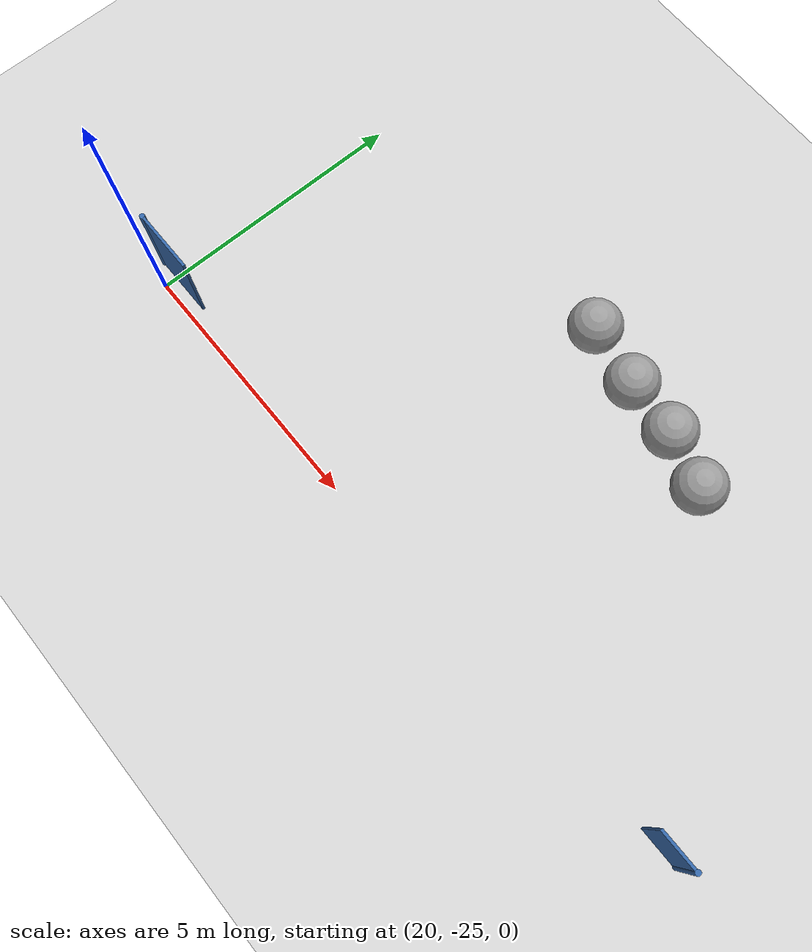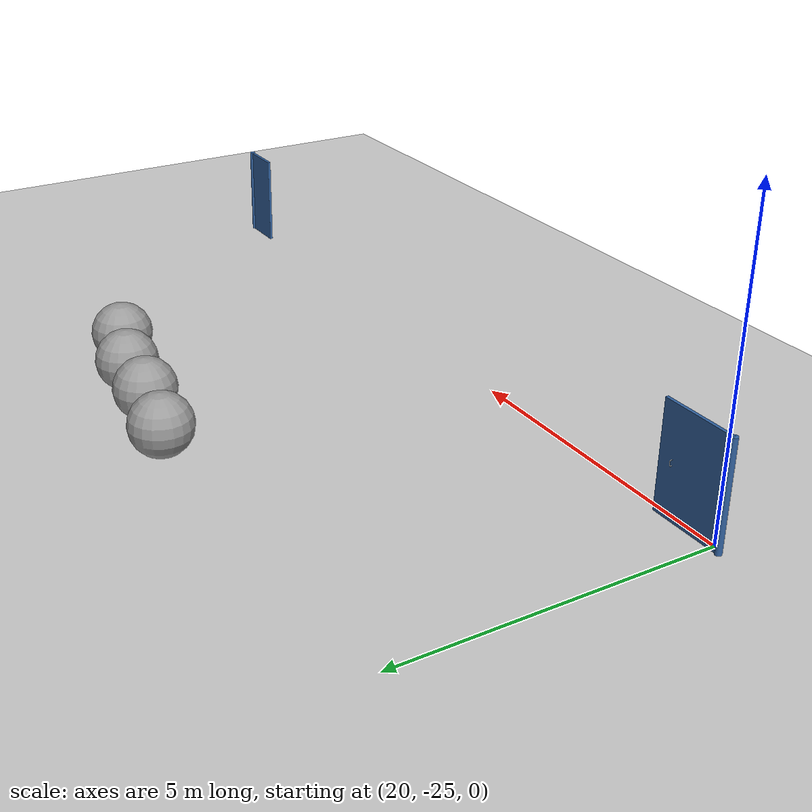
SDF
<sdf version="1.6">
 <world name="default">
  <model name="ground_plane">
   <static>1</static>
   <link name="link">
    <collision name="collision">
     <geometry><plane><normal>0 0 1</normal><size>100 100</size></plane></geometry>
     <surface><friction><ode><mu>100</mu><mu2>50</mu2></ode></friction></surface>
    </collision>
    <visual name="visual">
     <cast_shadows>0</cast_shadows>
     <geometry><plane><normal>0 0 1</normal><size>100 100</size></plane></geometry>
     <material>
      <script><uri>file://media/materials/scripts/gazebo.material</uri><name>Gazebo/Grey</name></script>
     </material>
    </visual>
   </link>
  </model>
  <model name="hinge_door_0.7">
   <link name="link_0">
    <inertial>
     <mass>0.11</mass>
     <inertia>
      <ixx>0.0366896</ixx>
      <ixy>0</ixy>
      <ixz>0</ixz>
      <iyy>0.0477583</iyy>
      <iyz>0</iyz>
      <izz>0.0111146</izz>
     </inertia>
    </inertial>
    <pose>0.05 0 1 0 -0 0</pose>
    <visual name="visual">
     <geometry><box><size>0.7 0.05 1.6</size></box></geometry>
     <material>
      <lighting>1</lighting>
      <script><uri>file://media/materials/scripts/gazebo.material</uri><name>Gazebo/Grey</name></script>
      <shader type="pixel"><normal_map>__default__</normal_map></shader>
      <ambient>0.204 0.396 0.643 1</ambient>
      <diffuse>0.7 0.7 0.7 1</diffuse>
      <specular>0.01 0.01 0.01 1</specular>
      <emissive>0 0 0 1</emissive>
     </material>
    </visual>
    <collision name="collision">
     <geometry><box><size>0.7 0.05 1.6</size></box></geometry>
     <surface>
      <friction>
       <ode><mu>1</mu><mu2>1</mu2><fdir1>0 0 0</fdir1><slip1>0</slip1><slip2>0</slip2></ode>
       <torsional>
        <coefficient>1</coefficient>
        <patch_radius>0</patch_radius>
        <surface_radius>0</surface_radius>
        <use_patch_radius>1</use_patch_radius>
        <ode><slip>0</slip></ode>
       </torsional>
      </friction>
      <bounce><restitution_coefficient>0</restitution_coefficient><threshold>1e+06</threshold></bounce>
      <contact>
       <collide_without_contact>0</collide_without_contact>
       <collide_without_contact_bitmask>1</collide_without_contact_bitmask>
       <collide_bitmask>1</collide_bitmask>
       <ode>
        <soft_cfm>0</soft_cfm>
        <soft_erp>0.2</soft_erp>
        <kp>1e+13</kp>
        <kd>1</kd>
        <max_vel>0.01</max_vel>
        <min_depth>0</min_depth>
       </ode>
       <bullet>
        <split_impulse>1</split_impulse>
        <split_impulse_penetration_threshold>-0.01</split_impulse_penetration_threshold>
        <soft_cfm>0</soft_cfm>
        <soft_erp>0.2</soft_erp>
        <kp>1e+13</kp>
        <kd>1</kd>
       </bullet>
      </contact>
     </surface>
    </collision>
   </link>
   <link name="link_1">
    <inertial>
     <mass>10.9956</mass>
     <inertia>
      <ixx>3.67206</ixx>
      <ixy>0</ixy>
      <ixz>0</ixz>
      <iyy>3.67206</iyy>
      <iyz>0</iyz>
      <izz>0.0137445</izz>
     </inertia>
    </inertial>
    <pose>0.45 0 1 0 -0 0</pose>
    <visual name="visual">
     <geometry><cylinder><radius>0.05</radius><length>1.6</length></cylinder></geometry>
     <material>
      <lighting>1</lighting>
      <script><uri>file://media/materials/scripts/gazebo.material</uri><name>Gazebo/Grey</name></script>
      <shader type="pixel"><normal_map>__default__</normal_map></shader>
      <ambient>0.204 0.396 0.643 1</ambient>
      <diffuse>0.7 0.7 0.7 1</diffuse>
      <specular>0.01 0.01 0.01 1</specular>
      <emissive>0 0 0 1</emissive>
     </material>
    </visual>
    <collision name="collision">
     <geometry><cylinder><radius>0.05</radius><length>2</length></cylinder></geometry>
     <surface>
      <friction>
       <ode><mu>1</mu><mu2>1</mu2><fdir1>0 0 0</fdir1><slip1>0</slip1><slip2>0</slip2></ode>
       <torsional>
        <coefficient>1</coefficient>
        <patch_radius>0</patch_radius>
        <surface_radius>0</surface_radius>
        <use_patch_radius>1</use_patch_radius>
        <ode><slip>0</slip></ode>
       </torsional>
      </friction>
      <bounce><restitution_coefficient>0</restitution_coefficient><threshold>1e+06</threshold></bounce>
      <contact>
       <collide_without_contact>0</collide_without_contact>
       <collide_without_contact_bitmask>1</collide_without_contact_bitmask>
       <collide_bitmask>1</collide_bitmask>
       <ode>
        <soft_cfm>0</soft_cfm>
        <soft_erp>0.2</soft_erp>
        <kp>1e+13</kp>
        <kd>1</kd>
        <max_vel>0.01</max_vel>
        <min_depth>0</min_depth>
       </ode>
       <bullet>
        <split_impulse>1</split_impulse>
        <split_impulse_penetration_threshold>-0.01</split_impulse_penetration_threshold>
        <soft_cfm>0</soft_cfm>
        <soft_erp>0.2</soft_erp>
        <kp>1e+13</kp>
        <kd>1</kd>
       </bullet>
      </contact>
     </surface>
    </collision>
   </link>
   <joint name="hinge" type="revolute">
    <parent>link_1</parent>
    <child>link_0</child>
    <pose>0.4 0 0 0 -0 0</pose>
    <axis>
     <xyz>0 0 1</xyz>
     <use_parent_model_frame>0</use_parent_model_frame>
     <limit>
      <lower>-1.79769e+308</lower>
      <upper>1.79769e+308</upper>
      <effort>-1</effort>
      <velocity>-1</velocity>
     </limit>
     <dynamics>
      <spring_reference>0</spring_reference>
      <spring_stiffness>0</spring_stiffness>
      <damping>0</damping>
      <friction>0</friction>
     </dynamics>
    </axis>
    <physics>
     <ode><limit><cfm>0</cfm><erp>0.2</erp></limit><suspension><cfm>0</cfm><erp>0.2</erp></suspension></ode>
    </physics>
   </joint>
   <joint name="floor_link" type="fixed">
    <child>link_1</child>
    <parent>world</parent>
    <axis>
     <xyz>0 0 1</xyz>
     <dynamics><spring_reference>0</spring_reference><spring_stiffness>0</spring_stiffness></dynamics>
     <use_parent_model_frame>0</use_parent_model_frame>
     <limit><lower>-1e+16</lower><upper>1e+16</upper></limit>
    </axis>
   </joint>
   <pose>32.6803 -24.7227 -0 0 -0 0</pose>
  </model>
  <model name="unit_sphere">
   <pose>27.9635 -20.024 0.5 0 -0 0</pose>
   <link name="link">
    <inertial>
     <mass>1</mass>
     <inertia><ixx>0.1</ixx><ixy>0</ixy><ixz>0</ixz><iyy>0.1</iyy><iyz>0</iyz><izz>0.1</izz></inertia>
    </inertial>
    <collision name="collision"><geometry><sphere><radius>0.5</radius></sphere></geometry></collision>
    <visual name="visual">
     <geometry><sphere><radius>0.5</radius></sphere></geometry>
     <material>
      <script><name>Gazebo/Grey</name><uri>file://media/materials/scripts/gazebo.material</uri></script>
     </material>
    </visual>
   </link>
  </model>
  <model name="unit_sphere_0">
   <pose>26.8926 -19.9164 0.5 0 -0 0</pose>
   <link name="link">
    <inertial>
     <mass>1</mass>
     <inertia><ixx>0.1</ixx><ixy>0</ixy><ixz>0</ixz><iyy>0.1</iyy><iyz>0</iyz><izz>0.1</izz></inertia>
    </inertial>
    <collision name="collision"><geometry><sphere><radius>0.5</radius></sphere></geometry></collision>
    <visual name="visual">
     <geometry><sphere><radius>0.5</radius></sphere></geometry>
     <material>
      <script><name>Gazebo/Grey</name><uri>file://media/materials/scripts/gazebo.material</uri></script>
     </material>
    </visual>
   </link>
  </model>
  <model name="unit_sphere_1">
   <pose>25.7114 -19.6994 0.5 0 -0 0</pose>
   <link name="link">
    <inertial>
     <mass>1</mass>
     <inertia><ixx>0.1</ixx><ixy>0</ixy><ixz>0</ixz><iyy>0.1</iyy><iyz>0</iyz><izz>0.1</izz></inertia>
    </inertial>
    <collision name="collision"><geometry><sphere><radius>0.5</radius></sphere></geometry></collision>
    <visual name="visual">
     <geometry><sphere><radius>0.5</radius></sphere></geometry>
     <material>
      <script><name>Gazebo/Grey</name><uri>file://media/materials/scripts/gazebo.material</uri></script>
     </material>
    </visual>
   </link>
  </model>
  <model name="unit_sphere_2">
   <pose>28.9926 -20.3254 0.5 0 -0 0</pose>
   <link name="link">
    <inertial>
     <mass>1</mass>
     <inertia><ixx>0.1</ixx><ixy>0</ixy><ixz>0</ixz><iyy>0.1</iyy><iyz>0</iyz><izz>0.1</izz></inertia>
    </inertial>
    <collision name="collision"><geometry><sphere><radius>0.5</radius></sphere></geometry></collision>
    <visual name="visual">
     <geometry><sphere><radius>0.5</radius></sphere></geometry>
     <material>
      <script><name>Gazebo/Grey</name><uri>file://media/materials/scripts/gazebo.material</uri></script>
     </material>
    </visual>
   </link>
  </model>
  <model name="hinge_door_1.2_1">
   <link name="link_0">
    <inertial>
     <mass>0.11</mass>
     <inertia>
      <ixx>0.0366896</ixx>
      <ixy>0</ixy>
      <ixz>0</ixz>
      <iyy>0.0477583</iyy>
      <iyz>0</iyz>
      <izz>0.0111146</izz>
     </inertia>
    </inertial>
    <pose>0.25 0 1 0 -0 0</pose>
    <visual name="visual">
     <geometry><box><size>1.2 0.05 1.7</size></box></geometry>
     <material>
      <lighting>1</lighting>
      <script><uri>file://media/materials/scripts/gazebo.material</uri><name>Gazebo/Grey</name></script>
      <shader type="pixel"><normal_map>__default__</normal_map></shader>
      <ambient>0.204 0.396 0.643 1</ambient>
      <diffuse>0.7 0.7 0.7 1</diffuse>
      <specular>0.01 0.01 0.01 1</specular>
      <emissive>0 0 0 1</emissive>
     </material>
    </visual>
    <collision name="collision">
     <geometry><box><size>1.2 0.05 1.7</size></box></geometry>
     <surface>
      <friction>
       <ode><mu>1</mu><mu2>1</mu2><fdir1>0 0 0</fdir1><slip1>0</slip1><slip2>0</slip2></ode>
       <torsional>
        <coefficient>1</coefficient>
        <patch_radius>0</patch_radius>
        <surface_radius>0</surface_radius>
        <use_patch_radius>1</use_patch_radius>
        <ode><slip>0</slip></ode>
       </torsional>
      </friction>
      <bounce><restitution_coefficient>0</restitution_coefficient><threshold>1e+06</threshold></bounce>
      <contact>
       <collide_without_contact>0</collide_without_contact>
       <collide_without_contact_bitmask>1</collide_without_contact_bitmask>
       <collide_bitmask>1</collide_bitmask>
       <ode>
        <soft_cfm>0</soft_cfm>
        <soft_erp>0.2</soft_erp>
        <kp>1e+13</kp>
        <kd>1</kd>
        <max_vel>0.01</max_vel>
        <min_depth>0</min_depth>
       </ode>
       <bullet>
        <split_impulse>1</split_impulse>
        <split_impulse_penetration_threshold>-0.01</split_impulse_penetration_threshold>
        <soft_cfm>0</soft_cfm>
        <soft_erp>0.2</soft_erp>
        <kp>1e+13</kp>
        <kd>1</kd>
       </bullet>
      </contact>
     </surface>
    </collision>
   </link>
   <link name="link_1">
    <inertial>
     <mass>10.9956</mass>
     <inertia>
      <ixx>3.67206</ixx>
      <ixy>0</ixy>
      <ixz>0</ixz>
      <iyy>3.67206</iyy>
      <iyz>0</iyz>
      <izz>0.0137445</izz>
     </inertia>
    </inertial>
    <pose>-0.35 0 1 0 -0 0</pose>
    <visual name="visual">
     <geometry><cylinder><radius>0.05</radius><length>1.7</length></cylinder></geometry>
     <material>
      <lighting>1</lighting>
      <script><uri>file://media/materials/scripts/gazebo.material</uri><name>Gazebo/Grey</name></script>
      <shader type="pixel"><normal_map>__default__</normal_map></shader>
      <ambient>0.204 0.396 0.643 1</ambient>
      <diffuse>0.7 0.7 0.7 1</diffuse>
      <specular>0.01 0.01 0.01 1</specular>
      <emissive>0 0 0 1</emissive>
     </material>
    </visual>
    <collision name="collision">
     <geometry><cylinder><radius>0.05</radius><length>2</length></cylinder></geometry>
     <surface>
      <friction>
       <ode><mu>1</mu><mu2>1</mu2><fdir1>0 0 0</fdir1><slip1>0</slip1><slip2>0</slip2></ode>
       <torsional>
        <coefficient>1</coefficient>
        <patch_radius>0</patch_radius>
        <surface_radius>0</surface_radius>
        <use_patch_radius>1</use_patch_radius>
        <ode><slip>0</slip></ode>
       </torsional>
      </friction>
      <bounce><restitution_coefficient>0</restitution_coefficient><threshold>1e+06</threshold></bounce>
      <contact>
       <collide_without_contact>0</collide_without_contact>
       <collide_without_contact_bitmask>1</collide_without_contact_bitmask>
       <collide_bitmask>1</collide_bitmask>
       <ode>
        <soft_cfm>0</soft_cfm>
        <soft_erp>0.2</soft_erp>
        <kp>1e+13</kp>
        <kd>1</kd>
        <max_vel>0.01</max_vel>
        <min_depth>0</min_depth>
       </ode>
       <bullet>
        <split_impulse>1</split_impulse>
        <split_impulse_penetration_threshold>-0.01</split_impulse_penetration_threshold>
        <soft_cfm>0</soft_cfm>
        <soft_erp>0.2</soft_erp>
        <kp>1e+13</kp>
        <kd>1</kd>
       </bullet>
      </contact>
     </surface>
    </collision>
   </link>
   <link name="knob">
    <inertial>
     <mass>0.1</mass>
     <pose>0.6 0.065 1 0 -0 0</pose>
     <inertia>
      <ixx>3.67206</ixx>
      <ixy>0</ixy>
      <ixz>0</ixz>
      <iyy>3.67206</iyy>
      <iyz>0</iyz>
      <izz>0.0137445</izz>
     </inertia>
    </inertial>
    <pose>0.6 0.065 1 0 -0 0</pose>
    <visual name="visual">
     <pose>0 -0.04 0 1.57 0 3.14</pose>
     <geometry><mesh><uri>model://door/door_puller_knob.dae</uri></mesh></geometry>
    </visual>
    <collision name="collision">
     <pose>0 -0.04 0 1.57 0 3.14</pose>
     <geometry><mesh><uri>model://door/door_puller_knob.dae</uri></mesh></geometry>
     <surface>
      <friction><ode><mu>0.8</mu><mu2>0.8</mu2><slip1>0</slip1><slip2>0</slip2></ode></friction>
      <contact><ode><kp>1e+06</kp><kd>1</kd><max_vel>0</max_vel></ode></contact>
     </surface>
    </collision>
   </link>
   <joint name="hinge" type="revolute">
    <parent>link_1</parent>
    <child>link_0</child>
    <pose>-0.6 0 0 0 -0 0</pose>
    <axis>
     <xyz>0 0 1</xyz>
     <use_parent_model_frame>0</use_parent_model_frame>
     <limit><lower>0</lower><upper>1.79769e+308</upper><effort>-1</effort><velocity>-1</velocity></limit>
     <dynamics>
      <spring_reference>0</spring_reference>
      <spring_stiffness>0</spring_stiffness>
      <damping>0</damping>
      <friction>0</friction>
     </dynamics>
    </axis>
    <physics>
     <ode><limit><cfm>0</cfm><erp>0.2</erp></limit><suspension><cfm>0</cfm><erp>0.2</erp></suspension></ode>
    </physics>
   </joint>
   <joint name="knob_link" type="fixed">
    <parent>link_0</parent>
    <child>knob</child>
    <axis>
     <xyz>0 0 1</xyz>
     <dynamics><spring_reference>0</spring_reference><spring_stiffness>0</spring_stiffness></dynamics>
     <use_parent_model_frame>0</use_parent_model_frame>
     <limit><lower>-1e+16</lower><upper>1e+16</upper></limit>
    </axis>
   </joint>
   <joint name="floor_link" type="fixed">
    <child>link_1</child>
    <parent>world</parent>
    <axis>
     <xyz>0 0 1</xyz>
     <dynamics><spring_reference>0</spring_reference><spring_stiffness>0</spring_stiffness></dynamics>
     <use_parent_model_frame>0</use_parent_model_frame>
     <limit><lower>-1e+16</lower><upper>1e+16</upper></limit>
    </axis>
   </joint>
   <pose>20.0404 -24.7445 -0 0 -0 -3.6e-05</pose>
  </model>
 </world>
</sdf>
